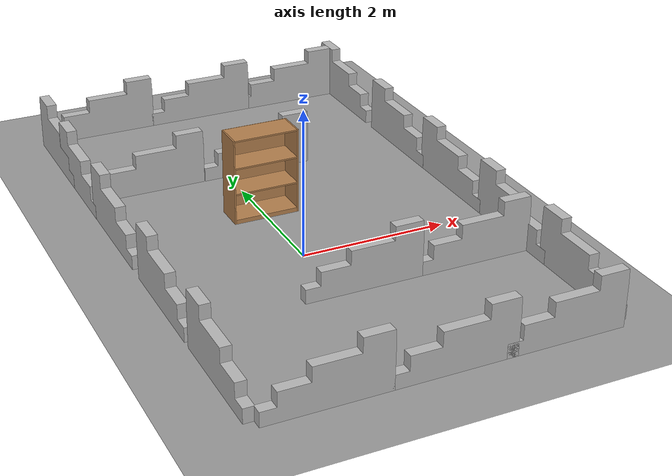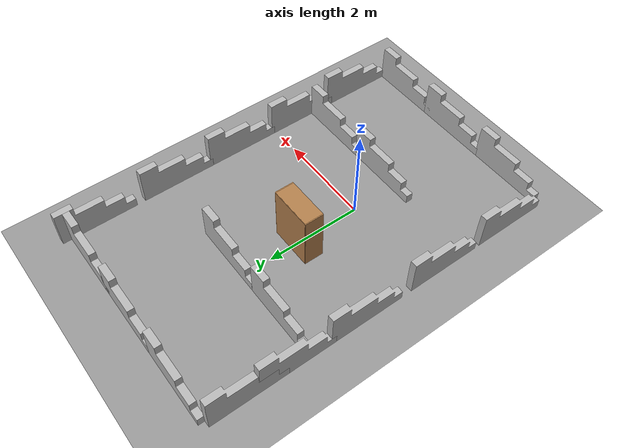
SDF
<sdf version="1.4">
 <world name="default">
  <light name="sun" type="directional">
   <pose>0 0 10 0 -0 0</pose>
   <diffuse>0.8 0.8 0.8 1</diffuse>
   <specular>0.2 0.2 0.2 1</specular>
   <attenuation>
    <range>1000</range>
    <constant>0.9</constant>
    <linear>0.01</linear>
    <quadratic>0.001</quadratic>
   </attenuation>
   <direction>0.5 0.1 -0.9</direction>
  </light>
  <scene><ambient>0.4 0.4 0.4 1</ambient><background>0.7 0.7 0.7 1</background><shadows>1</shadows></scene>
  <physics type="ode">
   <max_step_size>0.01</max_step_size>
   <real_time_factor>1</real_time_factor>
   <real_time_update_rate>100</real_time_update_rate>
   <gravity>0 0 -9.8</gravity>
  </physics>
  <model name="bookshelf">
   <static>1</static>
   <link name="link">
    <inertial><mass>1</mass></inertial>
    <collision name="back">
     <pose>0 0.005 0.6 0 -0 0</pose>
     <geometry><box><size>0.9 0.01 1.2</size></box></geometry>
    </collision>
    <visual name="visual1">
     <pose>0 0.005 0.6 0 -0 0</pose>
     <geometry><box><size>0.9 0.01 1.2</size></box></geometry>
     <material>
      <script><uri>file://media/materials/scripts/gazebo.material</uri><name>Gazebo/Wood</name></script>
     </material>
    </visual>
    <collision name="left_side">
     <pose>0.45 -0.195 0.6 0 -0 0</pose>
     <geometry><box><size>0.02 0.4 1.2</size></box></geometry>
    </collision>
    <visual name="visual2">
     <pose>0.45 -0.195 0.6 0 -0 0</pose>
     <geometry><box><size>0.02 0.4 1.2</size></box></geometry>
     <material>
      <script><uri>file://media/materials/scripts/gazebo.material</uri><name>Gazebo/Wood</name></script>
     </material>
    </visual>
    <collision name="right_side">
     <pose>-0.45 -0.195 0.6 0 -0 0</pose>
     <geometry><box><size>0.02 0.4 1.2</size></box></geometry>
    </collision>
    <visual name="visual3">
     <pose>-0.45 -0.195 0.6 0 -0 0</pose>
     <geometry><box><size>0.02 0.4 1.2</size></box></geometry>
     <material>
      <script><uri>file://media/materials/scripts/gazebo.material</uri><name>Gazebo/Wood</name></script>
     </material>
    </visual>
    <collision name="bottom">
     <pose>0 -0.195 0.03 0 -0 0</pose>
     <geometry><box><size>0.88 0.4 0.06</size></box></geometry>
    </collision>
    <visual name="visual4">
     <pose>0 -0.195 0.03 0 -0 0</pose>
     <geometry><box><size>0.88 0.4 0.06</size></box></geometry>
     <material>
      <script><uri>file://media/materials/scripts/gazebo.material</uri><name>Gazebo/Wood</name></script>
     </material>
    </visual>
    <collision name="top">
     <pose>0 -0.195 1.19 0 -0 0</pose>
     <geometry><box><size>0.88 0.4 0.02</size></box></geometry>
    </collision>
    <visual name="visual5">
     <pose>0 -0.195 1.19 0 -0 0</pose>
     <geometry><box><size>0.88 0.4 0.02</size></box></geometry>
     <material>
      <script><uri>file://media/materials/scripts/gazebo.material</uri><name>Gazebo/Wood</name></script>
     </material>
    </visual>
    <collision name="low_shelf">
     <pose>0 -0.195 0.43 0 -0 0</pose>
     <geometry><box><size>0.88 0.4 0.02</size></box></geometry>
    </collision>
    <visual name="visual6">
     <pose>0 -0.195 0.43 0 -0 0</pose>
     <geometry><box><size>0.88 0.4 0.02</size></box></geometry>
     <material>
      <script><uri>file://media/materials/scripts/gazebo.material</uri><name>Gazebo/Wood</name></script>
     </material>
    </visual>
    <collision name="high_shelf">
     <pose>0 -0.195 0.8 0 -0 0</pose>
     <geometry><box><size>0.88 0.4 0.02</size></box></geometry>
    </collision>
    <visual name="visual7">
     <pose>0 -0.195 0.8 0 -0 0</pose>
     <geometry><box><size>0.88 0.4 0.02</size></box></geometry>
     <material>
      <script><uri>file://media/materials/scripts/gazebo.material</uri><name>Gazebo/Wood</name></script>
     </material>
    </visual>
    <velocity_decay><linear>0</linear><angular>0</angular></velocity_decay>
   </link>
   <pose>0 1.53026 0 0 -0 0</pose>
  </model>
  <model name="ground_plane_0">
   <static>1</static>
   <link name="link">
    <collision name="collision">
     <geometry><plane><normal>0 0 1</normal><size>100 100</size></plane></geometry>
     <surface><friction><ode><mu>100</mu><mu2>50</mu2></ode></friction></surface>
    </collision>
    <visual name="visual">
     <cast_shadows>0</cast_shadows>
     <geometry><plane><normal>0 0 1</normal><size>100 100</size></plane></geometry>
     <material>
      <script><uri>file://media/materials/scripts/gazebo.material</uri><name>Gazebo/Grey</name></script>
     </material>
    </visual>
    <velocity_decay><linear>0</linear><angular>0</angular></velocity_decay>
   </link>
   <pose>0.497681 0 0 0 -0 0</pose>
  </model>
  <spherical_coordinates>
   <surface_model>EARTH_WGS84</surface_model>
   <latitude_deg>0</latitude_deg>
   <longitude_deg>0</longitude_deg>
   <elevation>0</elevation>
   <heading_deg>0</heading_deg>
  </spherical_coordinates>
  <model name="block_wall">
   <pose>-1 -3 0.30924 0 -0 0</pose>
   <static>1</static>
   <link name="blocks">
    <collision name="collision">
     <geometry><mesh><uri>model://drc_practice_block_wall/meshes/block_wall.dae</uri></mesh></geometry>
     <surface>
      <bounce><restitution_coefficient>0</restitution_coefficient><threshold>100000</threshold></bounce>
      <friction><ode><mu>100</mu><mu2>50</mu2></ode></friction>
      <contact>
       <ode><soft_cfm>0</soft_cfm><soft_erp>0.2</soft_erp><max_vel>0</max_vel><min_depth>0</min_depth></ode>
      </contact>
     </surface>
    </collision>
    <visual name="visual">
     <geometry><mesh><uri>model://drc_practice_block_wall/meshes/block_wall.dae</uri></mesh></geometry>
    </visual>
    <velocity_decay><linear>0</linear><angular>0</angular></velocity_decay>
   </link>
  </model>
  <model name="block_wall_0">
   <pose>0.563322 -3 0.30924 0 -0 0</pose>
   <static>1</static>
   <link name="blocks">
    <collision name="collision">
     <geometry><mesh><uri>model://drc_practice_block_wall/meshes/block_wall.dae</uri></mesh></geometry>
     <surface>
      <bounce><restitution_coefficient>0</restitution_coefficient><threshold>100000</threshold></bounce>
      <friction><ode><mu>100</mu><mu2>50</mu2></ode></friction>
      <contact>
       <ode><soft_cfm>0</soft_cfm><soft_erp>0.2</soft_erp><max_vel>0</max_vel><min_depth>0</min_depth></ode>
      </contact>
     </surface>
    </collision>
    <visual name="visual">
     <geometry><mesh><uri>model://drc_practice_block_wall/meshes/block_wall.dae</uri></mesh></geometry>
    </visual>
    <velocity_decay><linear>0</linear><angular>0</angular></velocity_decay>
   </link>
  </model>
  <model name="block_wall_1">
   <pose>2 -3 0.30924 0 -0 0</pose>
   <static>1</static>
   <link name="blocks">
    <collision name="collision">
     <geometry><mesh><uri>model://drc_practice_block_wall/meshes/block_wall.dae</uri></mesh></geometry>
     <surface>
      <bounce><restitution_coefficient>0</restitution_coefficient><threshold>100000</threshold></bounce>
      <friction><ode><mu>100</mu><mu2>50</mu2></ode></friction>
      <contact>
       <ode><soft_cfm>0</soft_cfm><soft_erp>0.2</soft_erp><max_vel>0</max_vel><min_depth>0</min_depth></ode>
      </contact>
     </surface>
    </collision>
    <visual name="visual">
     <geometry><mesh><uri>model://drc_practice_block_wall/meshes/block_wall.dae</uri></mesh></geometry>
    </visual>
    <velocity_decay><linear>0</linear><angular>0</angular></velocity_decay>
   </link>
  </model>
  <model name="block_wall_2">
   <pose>-1 4.7 0.30924 0 -0 0</pose>
   <static>1</static>
   <link name="blocks">
    <collision name="collision">
     <geometry><mesh><uri>model://drc_practice_block_wall/meshes/block_wall.dae</uri></mesh></geometry>
     <surface>
      <bounce><restitution_coefficient>0</restitution_coefficient><threshold>100000</threshold></bounce>
      <friction><ode><mu>100</mu><mu2>50</mu2></ode></friction>
      <contact>
       <ode><soft_cfm>0</soft_cfm><soft_erp>0.2</soft_erp><max_vel>0</max_vel><min_depth>0</min_depth></ode>
      </contact>
     </surface>
    </collision>
    <visual name="visual">
     <geometry><mesh><uri>model://drc_practice_block_wall/meshes/block_wall.dae</uri></mesh></geometry>
    </visual>
    <velocity_decay><linear>0</linear><angular>0</angular></velocity_decay>
   </link>
  </model>
  <model name="block_wall_3">
   <pose>0.570871 4.7 0.30924 0 -0 0</pose>
   <static>1</static>
   <link name="blocks">
    <collision name="collision">
     <geometry><mesh><uri>model://drc_practice_block_wall/meshes/block_wall.dae</uri></mesh></geometry>
     <surface>
      <bounce><restitution_coefficient>0</restitution_coefficient><threshold>100000</threshold></bounce>
      <friction><ode><mu>100</mu><mu2>50</mu2></ode></friction>
      <contact>
       <ode><soft_cfm>0</soft_cfm><soft_erp>0.2</soft_erp><max_vel>0</max_vel><min_depth>0</min_depth></ode>
      </contact>
     </surface>
    </collision>
    <visual name="visual">
     <geometry><mesh><uri>model://drc_practice_block_wall/meshes/block_wall.dae</uri></mesh></geometry>
    </visual>
    <velocity_decay><linear>0</linear><angular>0</angular></velocity_decay>
   </link>
  </model>
  <model name="block_wall_4">
   <pose>2 4.7 0.30924 0 -0 0</pose>
   <static>1</static>
   <link name="blocks">
    <collision name="collision">
     <geometry><mesh><uri>model://drc_practice_block_wall/meshes/block_wall.dae</uri></mesh></geometry>
     <surface>
      <bounce><restitution_coefficient>0</restitution_coefficient><threshold>100000</threshold></bounce>
      <friction><ode><mu>100</mu><mu2>50</mu2></ode></friction>
      <contact>
       <ode><soft_cfm>0</soft_cfm><soft_erp>0.2</soft_erp><max_vel>0</max_vel><min_depth>0</min_depth></ode>
      </contact>
     </surface>
    </collision>
    <visual name="visual">
     <geometry><mesh><uri>model://drc_practice_block_wall/meshes/block_wall.dae</uri></mesh></geometry>
    </visual>
    <velocity_decay><linear>0</linear><angular>0</angular></velocity_decay>
   </link>
  </model>
  <model name="block_wall_5">
   <pose>2.7 4.3 0.30924 0 -0 1.57</pose>
   <static>1</static>
   <link name="blocks">
    <collision name="collision">
     <geometry><mesh><uri>model://drc_practice_block_wall/meshes/block_wall.dae</uri></mesh></geometry>
     <surface>
      <bounce><restitution_coefficient>0</restitution_coefficient><threshold>100000</threshold></bounce>
      <friction><ode><mu>100</mu><mu2>50</mu2></ode></friction>
      <contact>
       <ode><soft_cfm>0</soft_cfm><soft_erp>0.2</soft_erp><max_vel>0</max_vel><min_depth>0</min_depth></ode>
      </contact>
     </surface>
    </collision>
    <visual name="visual">
     <geometry><mesh><uri>model://drc_practice_block_wall/meshes/block_wall.dae</uri></mesh></geometry>
    </visual>
    <velocity_decay><linear>0</linear><angular>0</angular></velocity_decay>
   </link>
  </model>
  <model name="block_wall_7">
   <pose>-2 4 0.30924 0 -0 1.57</pose>
   <static>1</static>
   <link name="blocks">
    <collision name="collision">
     <geometry><mesh><uri>model://drc_practice_block_wall/meshes/block_wall.dae</uri></mesh></geometry>
     <surface>
      <bounce><restitution_coefficient>0</restitution_coefficient><threshold>100000</threshold></bounce>
      <friction><ode><mu>100</mu><mu2>50</mu2></ode></friction>
      <contact>
       <ode><soft_cfm>0</soft_cfm><soft_erp>0.2</soft_erp><max_vel>0</max_vel><min_depth>0</min_depth></ode>
      </contact>
     </surface>
    </collision>
    <visual name="visual">
     <geometry><mesh><uri>model://drc_practice_block_wall/meshes/block_wall.dae</uri></mesh></geometry>
    </visual>
    <velocity_decay><linear>0</linear><angular>0</angular></velocity_decay>
   </link>
  </model>
  <model name="block_wall_8">
   <pose>-2 3 0.30924 0 -0 1.57</pose>
   <static>1</static>
   <link name="blocks">
    <collision name="collision">
     <geometry><mesh><uri>model://drc_practice_block_wall/meshes/block_wall.dae</uri></mesh></geometry>
     <surface>
      <bounce><restitution_coefficient>0</restitution_coefficient><threshold>100000</threshold></bounce>
      <friction><ode><mu>100</mu><mu2>50</mu2></ode></friction>
      <contact>
       <ode><soft_cfm>0</soft_cfm><soft_erp>0.2</soft_erp><max_vel>0</max_vel><min_depth>0</min_depth></ode>
      </contact>
     </surface>
    </collision>
    <visual name="visual">
     <geometry><mesh><uri>model://drc_practice_block_wall/meshes/block_wall.dae</uri></mesh></geometry>
    </visual>
    <velocity_decay><linear>0</linear><angular>0</angular></velocity_decay>
   </link>
  </model>
  <model name="block_wall_9">
   <pose>-2 1.51544 0.30924 0 -0 1.57</pose>
   <static>1</static>
   <link name="blocks">
    <collision name="collision">
     <geometry><mesh><uri>model://drc_practice_block_wall/meshes/block_wall.dae</uri></mesh></geometry>
     <surface>
      <bounce><restitution_coefficient>0</restitution_coefficient><threshold>100000</threshold></bounce>
      <friction><ode><mu>100</mu><mu2>50</mu2></ode></friction>
      <contact>
       <ode><soft_cfm>0</soft_cfm><soft_erp>0.2</soft_erp><max_vel>0</max_vel><min_depth>0</min_depth></ode>
      </contact>
     </surface>
    </collision>
    <visual name="visual">
     <geometry><mesh><uri>model://drc_practice_block_wall/meshes/block_wall.dae</uri></mesh></geometry>
    </visual>
    <velocity_decay><linear>0</linear><angular>0</angular></velocity_decay>
   </link>
  </model>
  <model name="block_wall_10">
   <pose>-2 -0.3 0.30924 0 -0 1.57</pose>
   <static>1</static>
   <link name="blocks">
    <collision name="collision">
     <geometry><mesh><uri>model://drc_practice_block_wall/meshes/block_wall.dae</uri></mesh></geometry>
     <surface>
      <bounce><restitution_coefficient>0</restitution_coefficient><threshold>100000</threshold></bounce>
      <friction><ode><mu>100</mu><mu2>50</mu2></ode></friction>
      <contact>
       <ode><soft_cfm>0</soft_cfm><soft_erp>0.2</soft_erp><max_vel>0</max_vel><min_depth>0</min_depth></ode>
      </contact>
     </surface>
    </collision>
    <visual name="visual">
     <geometry><mesh><uri>model://drc_practice_block_wall/meshes/block_wall.dae</uri></mesh></geometry>
    </visual>
    <velocity_decay><linear>0</linear><angular>0</angular></velocity_decay>
   </link>
  </model>
  <model name="block_wall_11">
   <pose>-2 -2 0.30924 0 -0 1.57</pose>
   <static>1</static>
   <link name="blocks">
    <collision name="collision">
     <geometry><mesh><uri>model://drc_practice_block_wall/meshes/block_wall.dae</uri></mesh></geometry>
     <surface>
      <bounce><restitution_coefficient>0</restitution_coefficient><threshold>100000</threshold></bounce>
      <friction><ode><mu>100</mu><mu2>50</mu2></ode></friction>
      <contact>
       <ode><soft_cfm>0</soft_cfm><soft_erp>0.2</soft_erp><max_vel>0</max_vel><min_depth>0</min_depth></ode>
      </contact>
     </surface>
    </collision>
    <visual name="visual">
     <geometry><mesh><uri>model://drc_practice_block_wall/meshes/block_wall.dae</uri></mesh></geometry>
    </visual>
    <velocity_decay><linear>0</linear><angular>0</angular></velocity_decay>
   </link>
  </model>
  <model name="block_wall_12">
   <pose>-1 2.57954 0.30924 0 -0 0</pose>
   <static>1</static>
   <link name="blocks">
    <collision name="collision">
     <geometry><mesh><uri>model://drc_practice_block_wall/meshes/block_wall.dae</uri></mesh></geometry>
     <surface>
      <bounce><restitution_coefficient>0</restitution_coefficient><threshold>100000</threshold></bounce>
      <friction><ode><mu>100</mu><mu2>50</mu2></ode></friction>
      <contact>
       <ode><soft_cfm>0</soft_cfm><soft_erp>0.2</soft_erp><max_vel>0</max_vel><min_depth>0</min_depth></ode>
      </contact>
     </surface>
    </collision>
    <visual name="visual">
     <geometry><mesh><uri>model://drc_practice_block_wall/meshes/block_wall.dae</uri></mesh></geometry>
    </visual>
    <velocity_decay><linear>0</linear><angular>0</angular></velocity_decay>
   </link>
  </model>
  <model name="block_wall_13">
   <pose>0.595094 2.57753 0.30924 0 -0 0</pose>
   <static>1</static>
   <link name="blocks">
    <collision name="collision">
     <geometry><mesh><uri>model://drc_practice_block_wall/meshes/block_wall.dae</uri></mesh></geometry>
     <surface>
      <bounce><restitution_coefficient>0</restitution_coefficient><threshold>100000</threshold></bounce>
      <friction><ode><mu>100</mu><mu2>50</mu2></ode></friction>
      <contact>
       <ode><soft_cfm>0</soft_cfm><soft_erp>0.2</soft_erp><max_vel>0</max_vel><min_depth>0</min_depth></ode>
      </contact>
     </surface>
    </collision>
    <visual name="visual">
     <geometry><mesh><uri>model://drc_practice_block_wall/meshes/block_wall.dae</uri></mesh></geometry>
    </visual>
    <velocity_decay><linear>0</linear><angular>0</angular></velocity_decay>
   </link>
  </model>
  <model name="block_wall_14">
   <pose>2.7 -2 0.30924 0 -0 1.57</pose>
   <static>1</static>
   <link name="blocks">
    <collision name="collision">
     <geometry><mesh><uri>model://drc_practice_block_wall/meshes/block_wall.dae</uri></mesh></geometry>
     <surface>
      <bounce><restitution_coefficient>0</restitution_coefficient><threshold>100000</threshold></bounce>
      <friction><ode><mu>100</mu><mu2>50</mu2></ode></friction>
      <contact>
       <ode><soft_cfm>0</soft_cfm><soft_erp>0.2</soft_erp><max_vel>0</max_vel><min_depth>0</min_depth></ode>
      </contact>
     </surface>
    </collision>
    <visual name="visual">
     <geometry><mesh><uri>model://drc_practice_block_wall/meshes/block_wall.dae</uri></mesh></geometry>
    </visual>
    <velocity_decay><linear>0</linear><angular>0</angular></velocity_decay>
   </link>
  </model>
  <model name="block_wall_15">
   <pose>2.7 -0.527162 0.30924 0 -0 1.57</pose>
   <static>1</static>
   <link name="blocks">
    <collision name="collision">
     <geometry><mesh><uri>model://drc_practice_block_wall/meshes/block_wall.dae</uri></mesh></geometry>
     <surface>
      <bounce><restitution_coefficient>0</restitution_coefficient><threshold>100000</threshold></bounce>
      <friction><ode><mu>100</mu><mu2>50</mu2></ode></friction>
      <contact>
       <ode><soft_cfm>0</soft_cfm><soft_erp>0.2</soft_erp><max_vel>0</max_vel><min_depth>0</min_depth></ode>
      </contact>
     </surface>
    </collision>
    <visual name="visual">
     <geometry><mesh><uri>model://drc_practice_block_wall/meshes/block_wall.dae</uri></mesh></geometry>
    </visual>
    <velocity_decay><linear>0</linear><angular>0</angular></velocity_decay>
   </link>
  </model>
  <model name="block_wall_16">
   <pose>2.7 1 0.30924 0 -0 1.57</pose>
   <static>1</static>
   <link name="blocks">
    <collision name="collision">
     <geometry><mesh><uri>model://drc_practice_block_wall/meshes/block_wall.dae</uri></mesh></geometry>
     <surface>
      <bounce><restitution_coefficient>0</restitution_coefficient><threshold>100000</threshold></bounce>
      <friction><ode><mu>100</mu><mu2>50</mu2></ode></friction>
      <contact>
       <ode><soft_cfm>0</soft_cfm><soft_erp>0.2</soft_erp><max_vel>0</max_vel><min_depth>0</min_depth></ode>
      </contact>
     </surface>
    </collision>
    <visual name="visual">
     <geometry><mesh><uri>model://drc_practice_block_wall/meshes/block_wall.dae</uri></mesh></geometry>
    </visual>
    <velocity_decay><linear>0</linear><angular>0</angular></velocity_decay>
   </link>
  </model>
  <model name="block_wall_17">
   <pose>2.7 2.53186 0.30924 0 -0 1.57</pose>
   <static>1</static>
   <link name="blocks">
    <collision name="collision">
     <geometry><mesh><uri>model://drc_practice_block_wall/meshes/block_wall.dae</uri></mesh></geometry>
     <surface>
      <bounce><restitution_coefficient>0</restitution_coefficient><threshold>100000</threshold></bounce>
      <friction><ode><mu>100</mu><mu2>50</mu2></ode></friction>
      <contact>
       <ode><soft_cfm>0</soft_cfm><soft_erp>0.2</soft_erp><max_vel>0</max_vel><min_depth>0</min_depth></ode>
      </contact>
     </surface>
    </collision>
    <visual name="visual">
     <geometry><mesh><uri>model://drc_practice_block_wall/meshes/block_wall.dae</uri></mesh></geometry>
    </visual>
    <velocity_decay><linear>0</linear><angular>0</angular></velocity_decay>
   </link>
  </model>
  <model name="block_wall_18">
   <pose>2 -1 0.30924 0 -0 0</pose>
   <static>1</static>
   <link name="blocks">
    <collision name="collision">
     <geometry><mesh><uri>model://drc_practice_block_wall/meshes/block_wall.dae</uri></mesh></geometry>
     <surface>
      <bounce><restitution_coefficient>0</restitution_coefficient><threshold>100000</threshold></bounce>
      <friction><ode><mu>100</mu><mu2>50</mu2></ode></friction>
      <contact>
       <ode><soft_cfm>0</soft_cfm><soft_erp>0.2</soft_erp><max_vel>0</max_vel><min_depth>0</min_depth></ode>
      </contact>
     </surface>
    </collision>
    <visual name="visual">
     <geometry><mesh><uri>model://drc_practice_block_wall/meshes/block_wall.dae</uri></mesh></geometry>
    </visual>
    <velocity_decay><linear>0</linear><angular>0</angular></velocity_decay>
   </link>
  </model>
  <model name="block_wall_19">
   <pose>0.469246 -1 0.30924 0 -0 0</pose>
   <static>1</static>
   <link name="blocks">
    <collision name="collision">
     <geometry><mesh><uri>model://drc_practice_block_wall/meshes/block_wall.dae</uri></mesh></geometry>
     <surface>
      <bounce><restitution_coefficient>0</restitution_coefficient><threshold>100000</threshold></bounce>
      <friction><ode><mu>100</mu><mu2>50</mu2></ode></friction>
      <contact>
       <ode><soft_cfm>0</soft_cfm><soft_erp>0.2</soft_erp><max_vel>0</max_vel><min_depth>0</min_depth></ode>
      </contact>
     </surface>
    </collision>
    <visual name="visual">
     <geometry><mesh><uri>model://drc_practice_block_wall/meshes/block_wall.dae</uri></mesh></geometry>
    </visual>
    <velocity_decay><linear>0</linear><angular>0</angular></velocity_decay>
   </link>
  </model>
 </world>
</sdf>
